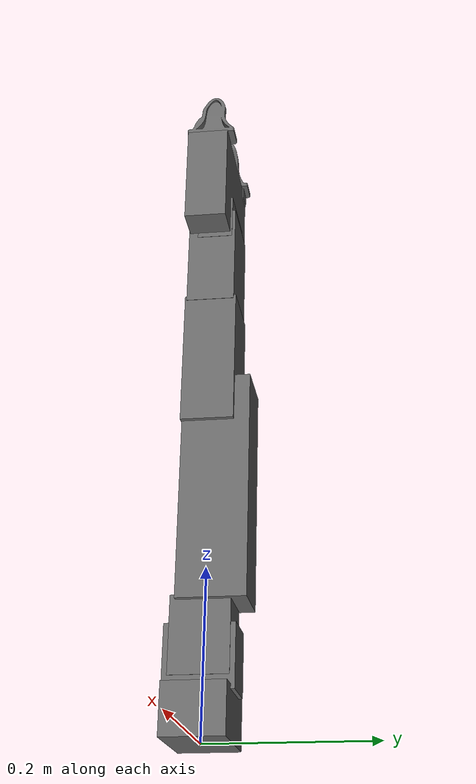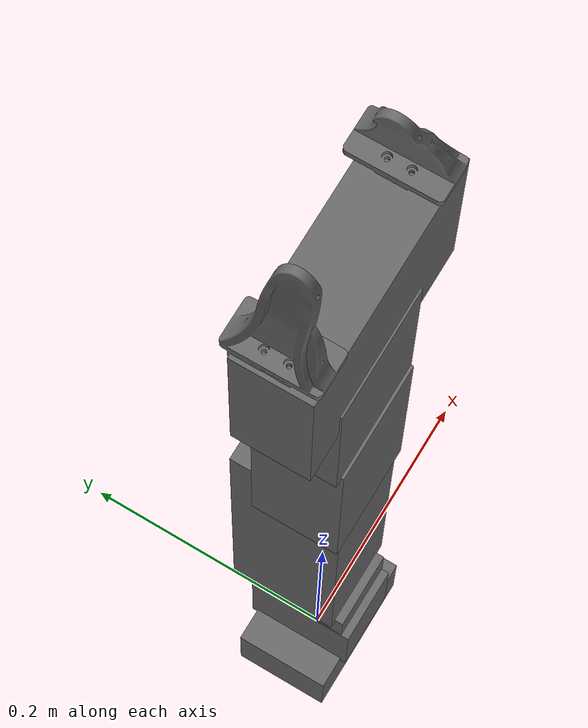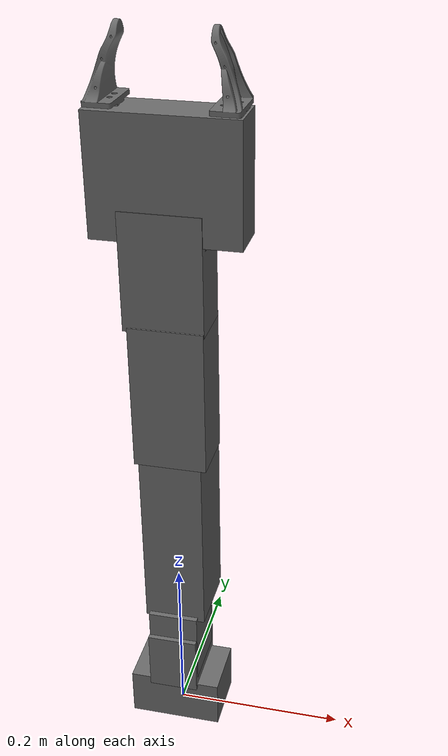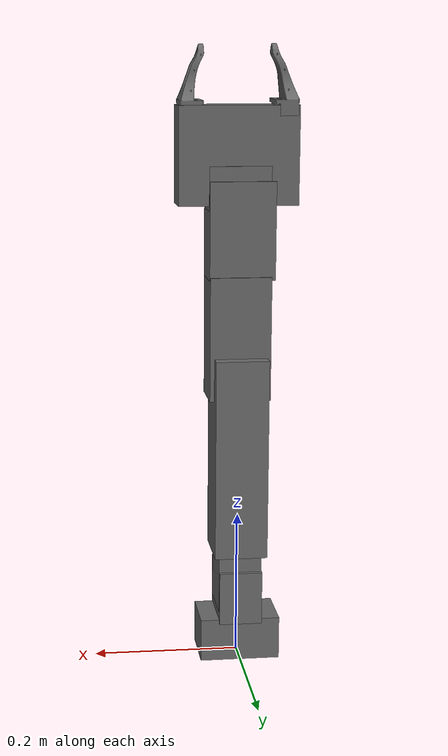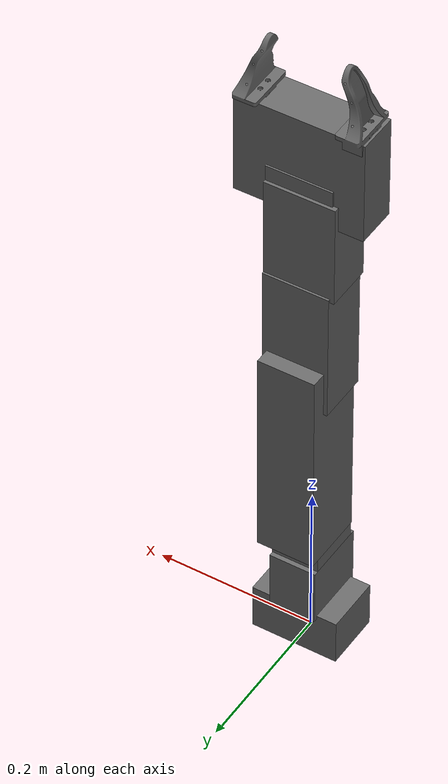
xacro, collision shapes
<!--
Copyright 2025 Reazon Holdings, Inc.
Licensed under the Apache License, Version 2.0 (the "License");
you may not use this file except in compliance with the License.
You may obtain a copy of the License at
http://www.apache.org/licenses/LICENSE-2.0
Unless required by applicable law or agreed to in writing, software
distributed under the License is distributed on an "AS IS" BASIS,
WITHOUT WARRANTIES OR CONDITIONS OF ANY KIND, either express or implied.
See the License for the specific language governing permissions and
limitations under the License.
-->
<?xml version="1.0" encoding="utf-8"?>
<robot xmlns:xacro="http://www.ros.org/wiki/xacro" name="openarm">
    <!-- Robot description parameters -->
    <xacro:arg name="prefix" default="" />
    <xacro:arg name="side" default="right" />
    <xacro:arg name="zero_pos" default="up" />

    <!-- Control-related parameters -->
    <xacro:arg name="can_device" default="can0" />
    <xacro:arg name="hardware_type" default="real" />
    <xacro:arg name="mock_sensor_commands" default="false" />

    <!-- Include robot description (without control parameters) -->
    <xacro:include filename="openarm.robot.xacro"/>
    <xacro:openarm_robot prefix="$(arg prefix)" side="$(arg side)" zero_pos="$(arg zero_pos)"/>

    <!-- Include control configuration (with only control parameters) -->
    <xacro:include filename="$(find openarm_description)/urdf/openarm.ros2_control.xacro"/>
    <xacro:arg name="initial_positions_file" default="$(find openarm_description)/config/initial_positions.yaml" />
    <xacro:openarm_ros2_control name="OpenArmHW" prefix="$(arg prefix)" initial_positions_file="$(arg initial_positions_file)" can_device="$(arg can_device)" hardware_type="$(arg hardware_type)" mock_sensor_commands="$(arg mock_sensor_commands)"/>

</robot>

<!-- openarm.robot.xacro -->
<robot xmlns:xacro="http://www.ros.org/wiki/xacro">

    <material name="gray">
        <color rgba="${105/255} ${105/255} ${105/255} 1.0"/>
    </material>
    <material name="dark_gray">
        <color rgba="${50/255} ${50/255} ${50/255} 1.0"/>
    </material>

    <xacro:macro name="openarm_robot" params="side:='right' prefix:='' zero_pos='up'">
        <!-- side right, left -->
        <!-- recommended prefixes left_, right_, etc. -->
        <!-- zero_pos up, arm -->

        <xacro:property name="reflect" value="${1 if side=='right' else -1}"/>
        <xacro:property name="rotate" value="${0 if side=='right' else pi}"/>

        <!-- ros2_control configuration is handled separately in openarm.urdf.xacro -->

        <link name="${prefix}dummy_link"/>

        <joint name="${prefix}dummy_joint" type="fixed">
            <parent link="${prefix}dummy_link"/>
            <child link="${prefix}link1"/>
        </joint>

        <link name="${prefix}link1">
            <visual>
                <origin rpy="0 0 0" xyz="0.0 0.0 -0.0007"/>
                <geometry>
                    <mesh filename="package://openarm_description/meshes/link1.stl"/>
                </geometry>
                <material name="gray"/>
            </visual>
            <collision>
                <origin rpy="0 0 0" xyz="0.0 0.0 0.0289"/>
                <geometry>
                    <box size="0.11 0.073 0.0592"/>
                </geometry>
            </collision>
            <inertial>
                <mass value="0.5769283920617254"/>
                <origin rpy="0 0 0" xyz="0.0 2.52845e-05 0.0229621"/>
                <inertia ixx="0.00034035167574060775" ixy="-2.623557985991217e-18" ixz="-6.093726095527621e-18" iyy="0.0004300058300010205" iyz="-5.09829482074806e-07" izz="0.0004802171432001996"/>
            </inertial>
        </link>
        <link name="${prefix}link2">
            <visual>
                <origin rpy="0 0 0" xyz="0.0 0.0 -0.05395"/>
                <geometry>
                    <mesh filename="package://openarm_description/meshes/link2.stl"/>
                </geometry>
                <material name="gray"/>
            </visual>
            <collision>
                <origin rpy="0 0 0" xyz="0.0 0.0 0.0371236"/>
                <geometry>
                    <box size="0.0590000000149012 0.08200000000000002 0.0742471498637348"/>
                </geometry>
            </collision>
            <inertial>
                <mass value="0.16257504134917358"/>
                <origin rpy="0 0 0" xyz="-0.000225878 -0.00183836 0.0278368"/>
                <inertia ixx="0.00023903110213294374" ixy="-7.551692921096027e-08" ixz="-1.1282723362433474e-06" iyy="0.00010490798314778774" iyz="5.9079627839725245e-06" izz="0.00019737368685935776"/>
            </inertial>
        </link>
        <link name="${prefix}link3">
            <visual>
                <origin rpy="${pi * 0.5} 0 0" xyz="0.0 0.0987 0.02975"/>
                <geometry>
                    <mesh filename="package://openarm_description/meshes/link3.stl"/>
                </geometry>
                <material name="gray"/>
            </visual>
            <collision>
                <origin rpy="${pi * 0.5} 0 0" xyz="-0.0164466 -0.00045542 0.02975"/>
                <geometry>
                    <box size="0.08989101803441879 0.06999999999999983 0.05903276947803012"/>
                </geometry>
            </collision>
            <inertial>
                <mass value="0.4201676469910031"/>
                <origin rpy="${pi * 0.5} 0 0" xyz="-0.00688022 0.0 0.0282752"/>
                <inertia ixx="0.00020256001126230057" ixy="6.004247875311213e-06" ixz="1.3304903057525575e-06" iyy="0.0002970624991387495" iyz="5.980157765704868e-07" izz="0.00032889994351244413"/>
            </inertial>
        </link>
        <link name="${prefix}link4">
            <visual>
                <origin rpy="${pi} -1.5620381439005742 0" xyz="-0.0986962 0.0 0.0621144"/>
                <geometry>
                    <mesh filename="package://openarm_description/meshes/link4.stl"/>
                </geometry>
                <material name="gray"/>
            </visual>
            <collision>
                <origin rpy="${pi} -1.5620381439005742 0" xyz="0.000266276 -0.0125642 -0.132604"/>
                <geometry>
                    <box size="0.27584673777150337 0.08211429171582063 0.07186573179325861"/>
                </geometry>
            </collision>
            <inertial>
                <mass value="0.819475539373447"/>
                <origin rpy="${pi} -1.5620381439005742 0" xyz="0.000781326 -0.0019461 -0.132411"/>
                <inertia ixx="0.00044078452033976287" ixy="6.020023694043618e-05" ixz="0.00014637459261941218" iyy="0.009208791480530413" iyz="1.5469710436444469e-06" izz="0.009170539316023695"/>
            </inertial>
        </link>
        <link name="${prefix}link5">
            <visual>
                <origin rpy="0 -0.008758182894317394 0" xyz="0.303864 0.0 -0.128451"/>
                <geometry>
                    <mesh filename="package://openarm_description/meshes/link5.stl"/>
                </geometry>
                <material name="gray"/>
            </visual>
            <collision>
                <origin rpy="0 -0.008758182894316818 0" xyz="-0.0542814 0.00265291 -0.0302022"/>
                <geometry>
                    <box size="0.16827213220625828 0.06430555048399171 0.08257859967140947"/>
                </geometry>
            </collision>
            <inertial>
                <mass value="0.4086748254352304"/>
                <origin rpy="0 -0.008758182894316905 0" xyz="-0.0831891 0.00251789 -0.0290107"/>
                <inertia ixx="0.00031417157425298747" ixy="-1.1391566029536723e-05" ixz="-1.883474090056124e-05" iyy="0.001221711435313989" iyz="1.46725418421127e-06" izz="0.0010755135067660488"/>
            </inertial>
        </link>
        <link name="${prefix}link6">
            <visual>
                <origin rpy="${-2.1276679791326423*reflect + rotate} ${reflect* -1.5542266826921929} ${rotate}" xyz="${reflect*-0.0485412 + (0 if side=='right' else 0.012)} ${reflect*-0.0860404 +(0 if side=='right' else 0.0018)} ${0.437784- (0 if side=='right' else 0.0023)}"/>
                <geometry>
                    <mesh filename="package://openarm_description/meshes/${'link6_rightarm.stl' if side=='right' else 'link6_leftarm.stl'}"/>
                </geometry>
                <material name="gray"/>
            </visual>
            <collision>
                <origin rpy="-2.127667979132636 -1.5542266826921927 0" xyz="-0.00260794 -0.00312921 -0.0652641"/>
                <geometry>
                    <box size="0.13114353004704765 0.05953478325301745 0.08817196195081879"/>
                </geometry>
            </collision>
            <inertial>
                <mass value="0.3448471958049249"/>
                <origin rpy="-2.127667979132636 -1.5542266826921927 0" xyz="-0.00898536 -0.0135065 -0.0438611"/>
                <inertia ixx="0.00019355980999748924" ixy="-1.0061665815148114e-06" ixz="-3.9096495715032716e-05" iyy="0.0003486912031865755" iyz="6.088060315273385e-06" izz="0.00028774975153756256"/>
            </inertial>
        </link>
        <link name="${prefix}link7">
            <visual>
                <origin rpy="0 ${reflect*-0.008758182894510852 + rotate} 0" xyz="0.558839 ${reflect*-0.00358671 + (0 if side=='right' else -0.007)} ${reflect*-0.0631962 + (0 if side=='right' else 0.071)}"/>
                <geometry>
                    <mesh filename="package://openarm_description/meshes/${'link7_rightarm.stl' if side=='right' else 'link7_leftarm.stl'}"/>
                </geometry>
                <material name="gray"/>
            </visual>
            <collision>
                <origin rpy="0 -0.008758182894511114 0" xyz="-0.000318103 0.0022839 0.0340014"/>
                <geometry>
                    <box size="0.058327402175132874 0.04432916698753661 0.08267601622411752"/>
                </geometry>
            </collision>
            <inertial>
                <mass value="0.2782138078738053"/>
                <origin rpy="0 -0.008758182894511043 0" xyz="5.99432e-05 0.0041433 0.0354274"/>
                <inertia ixx="0.00010424153315648891" ixy="2.735265831785291e-07" ixz="-1.0662322382945994e-07" iyy="0.00012313550743283462" iyz="-8.604996754782856e-08" izz="9.221319958512582e-05"/>
            </inertial>
        </link>
        <link name="${prefix}link8">
            <visual>
                <origin rpy="1.5709195259578714 -0.014065461951077267 0" xyz="0.557948 0.103587 0.019724"/>
                <geometry>
                    <mesh filename="package://openarm_description/meshes/link8.stl"/>
                </geometry>
                <material name="gray"/>
            </visual>
            <collision>
                <origin rpy="1.5709195259578714 -0.01406546195107726 0" xyz="-0.042694 -0.000543176 0.0110286"/>
                <geometry>
                    <box size="0.13038799671743653 0.05180887692688926 0.1601236763440867"/>
                </geometry>
            </collision>
            <inertial>
                <mass value="0.31261452743802165"/>
                <origin rpy="1.5709195259578714 -0.01406546195107726 0" xyz="-0.0607602 -0.000341696 0.00876618"/>
                <inertia ixx="0.00023465661366788053" ixy="7.609048882006294e-05" ixz="3.088694121124684e-07" iyy="0.0005065459365215377" iyz="1.9022818028658623e-07" izz="0.0003737029250058136"/>
            </inertial>
        </link>
        <link name="${prefix}gripper_center"/>
        <link name="${prefix}link_left_jaw">
            <visual>
                <origin rpy="0 -0.008758182894469432 0" xyz="0.665265 -0.00286677 -0.0209282"/>
                <geometry>
                    <mesh filename="package://openarm_description/meshes/left_jaw.stl"/>
                </geometry>
                <material name="gray"/>
            </visual>
            <collision>
                <origin rpy="0 -0.0087581828944695 0" xyz="0.665265 -0.00286677 -0.0209282"/>
                <geometry>
                    <mesh filename="package://openarm_description/meshes/left_jaw.stl"/>
                </geometry>
            </collision>
            <inertial>
                <mass value="0.04297897856394934"/>
                <origin rpy="0 -0.008758182894469429 0" xyz="-0.0187138 0.00217075 0.0159499"/>
                <inertia ixx="1.1771768742932353e-05" ixy="-2.389928166589898e-06" ixz="3.999292204534159e-06" iyy="2.3837354480794824e-05" iyz="3.494431877242991e-07" izz="3.0474590214086944e-05"/>
            </inertial>
        </link>
        <link name="${prefix}link_right_jaw">
            <visual>
                <origin rpy="0 -0.008758182898001485 0" xyz="0.665265 -0.00286677 -0.175928"/>
                <geometry>
                    <mesh filename="package://openarm_description/meshes/right_jaw.stl"/>
                </geometry>
                <material name="gray"/>
            </visual>
            <collision>
                <origin rpy="0 -0.008758182898001553 0" xyz="0.665265 -0.00286677 -0.175928"/>
                <geometry>
                    <mesh filename="package://openarm_description/meshes/right_jaw.stl"/>
                </geometry>
            </collision>
            <inertial>
                <mass value="0.042981665301134515"/>
                <origin rpy="0 -0.00875818289800148 0" xyz="-0.0187844 -0.00272415 -0.0159503"/>
                <inertia ixx="1.1561293087621594e-05" ixy="2.537718468008212e-06" ixz="-3.6591812257702003e-06" iyy="2.370165527871047e-05" iyz="4.848038235889027e-07" izz="3.039652946542647e-05"/>
            </inertial>
        </link>
        <joint name="${prefix}rev1" type="revolute">
            <parent link="${prefix}link1"/>
            <child link="${prefix}link2"/>
            <origin rpy="0 0 0" xyz="0.0 0.0 0.05325"/>
            <axis xyz="0 0 1"/>
            <limit effort="0.0" lower="${-pi/4.0 if side=='right' and zero_pos=='arm' else -2.0943951023931953}" upper="${pi/4.0 if side=='left' and zero_pos=='arm' else 2.0943951023931953}" velocity="0.0"/>
        </joint>
        <joint name="${prefix}rev2" type="revolute">
            <parent link="${prefix}link2"/>
            <child link="${prefix}link3"/>
            <origin rpy="-1.5707963267948968 ${pi/2 if zero_pos=='up' else 0.0} 0.0" xyz="0.0 -0.02975 0.04475"/>
            <axis xyz="0 0 1"/>
            <limit effort="0.0" lower="${-pi/2.0 if zero_pos=='up' else -pi/18.0}" upper="${pi/2 if zero_pos=='up' else pi * 17.0 / 18.0}" velocity="0.0"/>
        </joint>
        <joint name="${prefix}rev3" type="revolute">
            <parent link="${prefix}link3"/>
            <child link="${prefix}link4"/>
            <origin rpy="-1.5707963267949054 ${rotate} -1.562038143900564" xyz="-0.0612477 -0.000536432 0.02975"/>
            <axis xyz="0 0 -1"/>
            <limit effort="0.0" lower="${-pi * 2.0 / 3.0}" upper="${pi * 2.0 / 3.0}" velocity="0.0"/>
        </joint>
        <joint name="${prefix}rev4" type="revolute">
            <parent link="${prefix}link4"/>
            <child link="${prefix}link5"/>
            <origin rpy="-0.20701608758495998 -1.5707963267948566 -2.937419385117548" xyz="0.0297547 0.0 -0.24175"/>
            <axis xyz="0 0 1"/>
            <limit effort="0.0" lower="0" upper="${pi * 5.0 / 6.0}" velocity="0.0"/>
        </joint>
        <joint name="${prefix}rev5" type="revolute">
            <parent link="${prefix}link5"/>
            <child link="${prefix}link6"/>
            <origin rpy="1.5707963267948473 -0.5569332500492129 1.556730325338251" xyz="-0.133937 0.00188408 -0.0297547"/>
            <axis xyz="0 0 -1"/>
            <limit effort="0.0" lower="${-pi * 2.0 / 3.0}" upper="${pi * 2.0 / 3.0}" velocity="0.0"/>
        </joint>
        <joint name="${prefix}rev6" type="revolute">
            <parent link="${prefix}link6"/>
            <child link="${prefix}link7"/>
            <origin rpy="-1.5707963268024898 -1.5567303253382425 -0.5569332500461536" xyz="-0.0187648 -0.0301352 -0.12105"/>
            <axis xyz="0 0 ${reflect}"/>
            <limit effort="0.0" lower="${-pi / 2.0}" upper="${pi / 2.0}" velocity="0.0"/>
        </joint>
        <joint name="${prefix}rev7" type="revolute">
            <parent link="${prefix}link7"/>
            <child link="${prefix}link8"/>
            <origin rpy="-1.5707963267950005 -0.00875904933536772 -0.014066001454933467" xyz="-0.000217313 -0.0154485 0.0355"/>
            <axis xyz="0 0 -1"/>
            <limit effort="0.0" lower="${-pi * 11.0 / 36.0}" upper="${pi * 11.0 / 36.0}" velocity="0.0"/>
        </joint>
        <!-- this is used as the actuator interface, the other gripper mimics motion -->
        <joint name="${prefix}gripper" type="prismatic">
            <parent link="${prefix}link8"/>
            <child link="${prefix}link_left_jaw"/>
            <origin rpy="1.570796326795101 -0.014066001454929162 0.00875904933542146" xyz="-0.1071 0.0768568 0.0132053"/>
            <axis xyz="0 0 -1"/>
            <limit effort="0.0" lower="-0.0451" upper="0.0" velocity="0.1"/>
        </joint>
        <joint name="${prefix}gripper_mimic" type="prismatic">
            <parent link="${prefix}link8"/>
            <child link="${prefix}link_right_jaw"/>
            <origin rpy="1.570796326794883 -0.014066001454927403 0.008759049336290027" xyz="-0.10571 -0.0781373 0.0132053"/>
            <axis xyz="0 0 -1"/>
            <limit effort="0.0" lower="-0.0451" upper="0.0" velocity="0.0"/>
            <mimic joint="${prefix}gripper" multiplier="-1.0" offset="0.0"/>
        </joint>
        <joint name="${prefix}virtual_gripper_center" type="fixed">
            <parent link="${prefix}link8"/>
            <child link="${prefix}gripper_center"/>
            <origin rpy="0 0 0" xyz="-0.13 0.00 0.0132053"/>
        </joint>
    </xacro:macro>
</robot>
